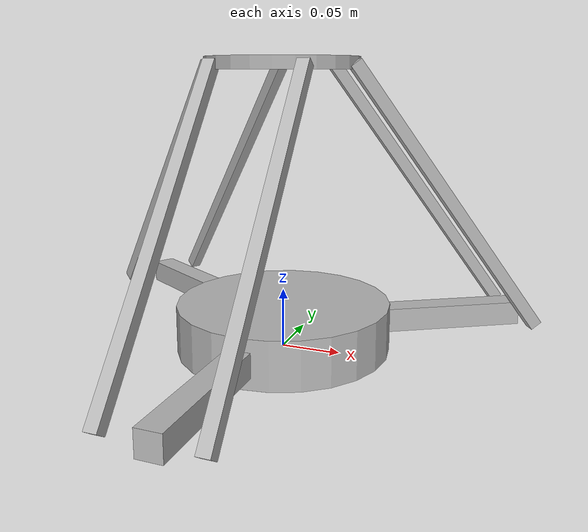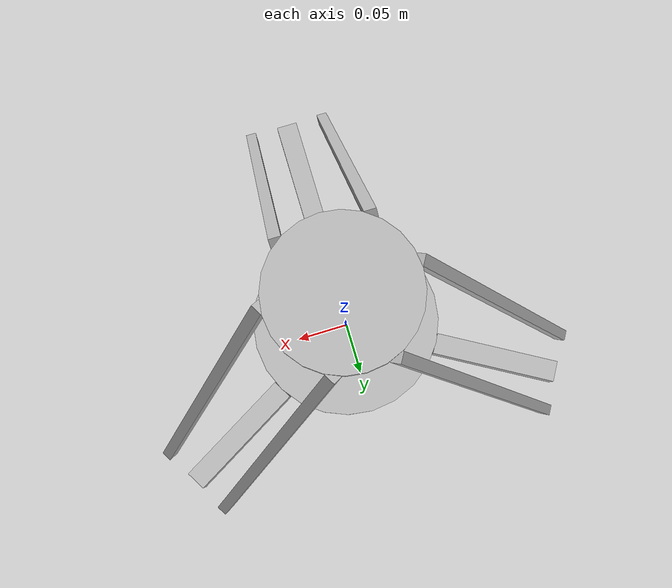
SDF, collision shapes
<?xml version="1.0"?>
<sdf version="1.4">
<model name="delta_robot">

  <plugin name="joint_controller" filename="libjoint_controller.so"/>

  <joint name="proximal_link_1_joint" type="revolute">
		<parent>base_link</parent>
		<child>proximal_link_1</child>
		<pose>-0.06 0 0 0 0 0</pose>
		<axis>
			<xyz>0.5000001943375613 -0.8660252915835662 0</xyz>
      <limit>
				<lower> -0.785398 </lower>
				<upper> 1.57079 </upper>
				<velocity> 1 </velocity>
			</limit>
      <dynamics>
      <damping>0.0001</damping>
      <friction>0.01</friction>
    </dynamics>
		</axis>
	</joint>

	<joint name="proximal_link_3_joint" type="revolute">
		<parent>base_link</parent>
		<child>proximal_link_3</child>
		<pose>-0.06 0 0 0 0 0</pose>
		<axis>
			<xyz>0.5000001943375613 0.8660252915835662 0</xyz>
      <limit>
				<lower> -0.785398 </lower>
				<upper> 1.57079 </upper>
				<velocity> 1 </velocity>
			</limit>
      <dynamics>
      <damping>0.0001</damping>
      <friction>0.01</friction>
    </dynamics>
		</axis>
	</joint>

	<joint name="proximal_link_5_joint" type="revolute">
		<parent>base_link</parent>
		<child>proximal_link_5</child>
		<pose>-0.06 0 0 0 0 0</pose>
		<axis>
			<xyz>-1 0 0</xyz>
      <limit>
				<lower> -0.785398 </lower>
				<upper> 1.57079 </upper>
				<velocity> 1 </velocity>
			</limit>
      <dynamics>
      <damping>0.0001</damping>
      <friction>0.01</friction>
    </dynamics>
		</axis>
	</joint>

  <joint name="distal_link_1_joint" type="ball">
		<parent>proximal_link_1</parent>
		<child>distal_link_1</child>
		<pose> 0.135345 0 0 0 0 0</pose>
		<axis>
			<xyz>1 0 0</xyz>
      <dynamics>
      <damping>0.0001</damping>
      <friction>0.01</friction>
    </dynamics>
		</axis>
	</joint>

  <joint name="distal_link_2_joint" type="ball">
		<parent>proximal_link_1</parent>
		<child>distal_link_2</child>
		<pose> 0.135345 0 0 0 0 0</pose>
		<axis>
			<xyz>1 0 0</xyz>
      <dynamics>
      <damping>0.0001</damping>
      <friction>0.01</friction>
    </dynamics>
		</axis>
	</joint>

  <joint name="distal_link_3_joint" type="ball">
		<parent>proximal_link_3</parent>
		<child>distal_link_3</child>
		<pose> 0.135345 0 0 0 0 0</pose>
		<axis>
			<xyz>1 0 0</xyz>
      <dynamics>
      <damping>0.0001</damping>
      <friction>0.01</friction>
    </dynamics>
		</axis>
	</joint>

  <joint name="distal_link_4_joint" type="ball">
		<parent>proximal_link_3</parent>
		<child>distal_link_4</child>
		<pose> 0.135345 0 0 0 0 0</pose>
		<axis>
			<xyz>1 0 0</xyz>
      <dynamics>
      <damping>0.0001</damping>
      <friction>0.01</friction>
    </dynamics>
		</axis>
	</joint>

  <joint name="distal_link_5_joint" type="ball">
		<parent>proximal_link_5</parent>
		<child>distal_link_5</child>
		<pose> 0.135345 0 0 0 0 0</pose>
		<axis>
			<xyz>1 0 0</xyz>
      <dynamics>
      <damping>0.0001</damping>
      <friction>0.01</friction>
    </dynamics>
		</axis>
	</joint>

  <joint name="distal_link_6_joint" type="ball">
		<parent>proximal_link_5</parent>
		<child>distal_link_6</child>
		<pose> 0.135345 0 0 0 0 0</pose>
		<axis>
			<xyz>1 0 0</xyz>
      <dynamics>
      <damping>0.0001</damping>
      <friction>0.01</friction>
    </dynamics>
		</axis>
	</joint>

  <joint name="platform_link_1_joint" type="ball">
		<parent>distal_link_1</parent>
		<child>platform_link</child>
		<pose>0.06205127186683686 -0.007475938717505671 0 0 0 0</pose>
	</joint>

  <joint name="platform_link_2_joint" type="ball">
		<parent>distal_link_2</parent>
		<child>platform_link</child>
		<pose>0.02455125729151977 0.0574759581512618 0 0 0 0</pose>
	</joint>

  <joint name="platform_link_3_joint" type="ball">
		<parent>distal_link_3</parent>
		<child>platform_link</child>
		<pose>-0.02455125729151977 0.0574759581512618 0 0 0 0</pose>
	</joint>

  <joint name="platform_link_4_joint" type="ball">
		<parent>distal_link_4</parent>
		<child>platform_link</child>
		<pose>-0.06205127186683686 -0.007475938717505671 0 0 0 0</pose>
	</joint>

  <joint name="platform_link_5_joint" type="ball">
		<parent>distal_link_5</parent>
		<child>platform_link</child>
		<pose>-0.0375 -0.05 0 0 0 0</pose>
	</joint>

  <joint name="platform_link_6_joint" type="ball">
		<parent>distal_link_6</parent>
		<child>platform_link</child>
		<pose>0.0375 -0.05 0 0 0 0</pose>
  </joint>

  <link name="base_link">
    <pose>0 0 0.02 0 0 0</pose>
    <inertial>
    <mass>0.1</mass>
    <inertia>
      <ixx>0.0002025</ixx>
      <ixy>0.0</ixy>
      <ixz>0.0</ixz>
      <iyy>0.0002025</iyy>
      <iyz>0.0</iyz>
      <izz>0.000405</izz>
    </inertia>
    </inertial>
    <collision name="collision">
      <geometry>
        <cylinder>
          <radius>0.09</radius>
          <length>0.04</length>
        </cylinder>
      </geometry>
    </collision>
    <visual name="visual">
    <pose>-0.124 0.105 -0.02 0 0 -1.5708</pose>
      <geometry>
        <mesh>
          <uri>model://stewart_platform/meshes/Stuart_base.dae</uri>
          <scale> 0.001 0.001 0.001 </scale>
        </mesh>
      </geometry>
    </visual>
  </link>

  <link name="proximal_link_1">
    <pose>0.1299037937375349 0.07500002915063418 0.02 0 0 0.523599</pose>
    <inertial>
      <mass>0.002</mass>
      <inertia>
        <ixx>1.0000000000000001e-07</ixx>
        <ixy>0.0</ixy>
        <ixz>0.0</ixz>
        <iyy>2.4499020000000002e-05</iyy>
        <iyz>0.0</iyz>
        <izz>2.4499020000000002e-05</izz>
      </inertia>
    </inertial>
    <collision name="collision">
      <geometry>
        <box>
          <size>0.12 0.02 0.02</size>
        </box>
      </geometry>
    </collision>
    <visual name="visual">
      <geometry>
        <box>
          <size>0.12 0.02 0.02</size>
        </box>
      </geometry>
    </visual>
  </link>

  <link name="proximal_link_3">
    <pose>-0.1299037937375349 0.07500002915063418 0.02 0 0 2.61799</pose>
    <inertial>
    <mass>0.002</mass>
    <inertia>
      <ixx>1.0000000000000001e-07</ixx>
      <ixy>0.0</ixy>
      <ixz>0.0</ixz>
      <iyy>2.4499020000000002e-05</iyy>
      <iyz>0.0</iyz>
      <izz>2.4499020000000002e-05</izz>
    </inertia>
    </inertial>
    <collision name="collision">
      <geometry>
        <box>
          <size>0.12 0.02 0.02</size>
        </box>
      </geometry>
    </collision>
    <visual name = "visual">
      <geometry>
        <box>
          <size>0.12 0.02 0.02</size>
        </box>
      </geometry>
    </visual>
  </link>

  <link name="proximal_link_5">
    <pose>0.0 -0.15 0.02 0 0 4.71239</pose>
    <inertial>
    <mass>0.002</mass>
    <inertia>
      <ixx>1.0000000000000001e-07</ixx>
      <ixy>0.0</ixy>
      <ixz>0.0</ixz>
      <iyy>2.4499020000000002e-05</iyy>
      <iyz>0.0</iyz>
      <izz>2.4499020000000002e-05</izz>
    </inertia>
    </inertial>
    <collision name="collision">
      <geometry>
        <box>
          <size>0.12 0.02 0.02</size>
        </box>
      </geometry>
    </collision>
    <visual name = "visual">
      <geometry>
        <box>
          <size>0.12 0.02 0.02</size>
        </box>
      </geometry>
    </visual>
  </link>

  <link name="distal_link_1">
    <gravity>false</gravity>
    <pose>0.13133329519352216 0.032524076829499225 0.12917082497169285 1.57075 0.9383966687035906 0.523599</pose>
    <inertial>
    <mass>0.001</mass>
    <inertia>
      <ixx>1.2500000000000001e-08</ixx>
      <ixy>0.0</ixy>
      <ixz>0.0</ixz>
      <iyy>6.112095181412999e-05</iyy>
      <iyz>0.0</iyz>
      <izz>6.112095181412999e-05</izz>
    </inertia>
    </inertial>
    <collision name="collision">
      <geometry>
        <box>
          <size>0.27069 0.01 0.01</size>
        </box>
      </geometry>
    </collision>
    <visual name = "visual">
      <geometry>
        <box>
          <size>0.27069 0.01 0.01</size>
        </box>
      </geometry>
    </visual>
  </link>

  <link name="distal_link_2">
  <gravity>false</gravity>
    <pose>0.09383328061820506 0.0974759736982667 0.12917082497169285  1.57075 0.9383966687035906 0.523599</pose>
    <inertial>
    <mass>0.001</mass>
    <inertia>
      <ixx>1.2500000000000001e-08</ixx>
      <ixy>0.0</ixy>
      <ixz>0.0</ixz>
      <iyy>6.112095181412999e-05</iyy>
      <iyz>0.0</iyz>
      <izz>6.112095181412999e-05</izz>
    </inertia>
    </inertial>
    <collision name="collision">
      <geometry>
        <box>
          <size>0.27069 0.01 0.01</size>
        </box>
      </geometry>
    </collision>
    <visual name = "visual">
      <geometry>
        <box>
          <size>0.27069 0.01 0.01</size>
        </box>
      </geometry>
    </visual>
  </link>

  <link name="distal_link_3">
  <gravity>false</gravity>
    <pose>-0.09383328061820506 0.0974759736982667 0.12917082497169285  1.57075 0.9383966687035906 2.61799</pose>
    <inertial>
    <mass>0.001</mass>
    <inertia>
      <ixx>1.2500000000000001e-08</ixx>
      <ixy>0.0</ixy>
      <ixz>0.0</ixz>
      <iyy>6.112095181412999e-05</iyy>
      <iyz>0.0</iyz>
      <izz>6.112095181412999e-05</izz>
    </inertia>
    </inertial>
    <collision name="collision">
      <geometry>
        <box>
          <size>0.27069 0.01 0.01</size>
        </box>
      </geometry>
    </collision>
    <visual name = "visual">
      <geometry>
        <box>
          <size>0.27069 0.01 0.01</size>
        </box>
      </geometry>
    </visual>
  </link>

  <link name="distal_link_4">
  <gravity>false</gravity>
    <pose>-0.13133329519352216 0.032524076829499225 0.12917082497169285  1.57075 0.9383966687035906 2.61799</pose>
    <inertial>
    <mass>0.001</mass>
    <inertia>
      <ixx>1.2500000000000001e-08</ixx>
      <ixy>0.0</ixy>
      <ixz>0.0</ixz>
      <iyy>6.112095181412999e-05</iyy>
      <iyz>0.0</iyz>
      <izz>6.112095181412999e-05</izz>
    </inertia>
    </inertial>
    <collision name="collision">
      <geometry>
        <box>
          <size>0.27069 0.01 0.01</size>
        </box>
      </geometry>
    </collision>
    <visual name = "visual">
      <geometry>
        <box>
          <size>0.27069 0.01 0.01</size>
        </box>
      </geometry>
    </visual>
  </link>

  <link name="distal_link_5">
  <gravity>false</gravity>
    <pose>-0.0375 -0.13 0.12917082497169285  1.57075 0.9383966687035906 4.71239</pose>
    <inertial>
    <mass>0.001</mass>
    <inertia>
      <ixx>1.2500000000000001e-08</ixx>
      <ixy>0.0</ixy>
      <ixz>0.0</ixz>
      <iyy>6.112095181412999e-05</iyy>
      <iyz>0.0</iyz>
      <izz>6.112095181412999e-05</izz>
    </inertia>
    </inertial>
    <collision name="collision">
      <geometry>
        <box>
          <size>0.27069 0.01 0.01</size>
        </box>
      </geometry>
    </collision>
    <visual name = "visual">
      <geometry>
        <box>
          <size>0.27069 0.01 0.01</size>
        </box>
      </geometry>
    </visual>
  </link>

  <link name="distal_link_6">
  <gravity>false</gravity>
    <pose>0.0375 -0.13 0.12917082497169285  1.57075 0.9383966687035906 4.71239</pose>
    <inertial>
    <mass>0.001</mass>
    <inertia>
      <ixx>1.2500000000000001e-08</ixx>
      <ixy>0.0</ixy>
      <ixz>0.0</ixz>
      <iyy>6.112095181412999e-05</iyy>
      <iyz>0.0</iyz>
      <izz>6.112095181412999e-05</izz>
    </inertia>
    </inertial>
    <collision name="collision">
      <geometry>
        <box>
          <size>0.27069 0.01 0.01</size>
        </box>
      </geometry>
    </collision>
    <visual name = "visual">
      <geometry>
        <box>
          <size>0.27069 0.01 0.01</size>
        </box>
      </geometry>
    </visual>
  </link>

  <plugin name="p3d_base_controller" filename="libgazebo_ros_p3d.so">
    <alwaysOn>true</alwaysOn>
    <updateRate>100.0</updateRate>
    <bodyName>platform_link</bodyName>
    <topicName>groundtruth/platform</topicName>
    <gaussianNoise>0.0</gaussianNoise>
    <frameName>map</frameName>
    <xyzOffsets>0 0 0</xyzOffsets>
    <rpyOffsets>0 0 0</rpyOffsets>
  </plugin>

  <link name="platform_link">
  <gravity>false</gravity>
    <pose>0 0 0.23834164994338572 0 0 0</pose>
    <inertial>
    <mass>0.001</mass>
    <inertia>
      <ixx>0.0002025</ixx>
      <ixy>0.0</ixy>
      <ixz>0.0</ixz>
      <iyy>0.0002025</iyy>
      <iyz>0.0</iyz>
      <izz>0.000405</izz>
    </inertia>
    </inertial>
    <collision name="collision">
      <geometry>
        <cylinder>
          <radius>0.0625</radius>
          <length>0.01</length>
        </cylinder>
      </geometry>
    </collision>
    <visual name = "visual">
      <geometry>
        <cylinder>
          <radius>0.0625</radius>
          <length>0.01</length>
        </cylinder>
      </geometry>
    </visual>
  </link>
</model>
</sdf>
